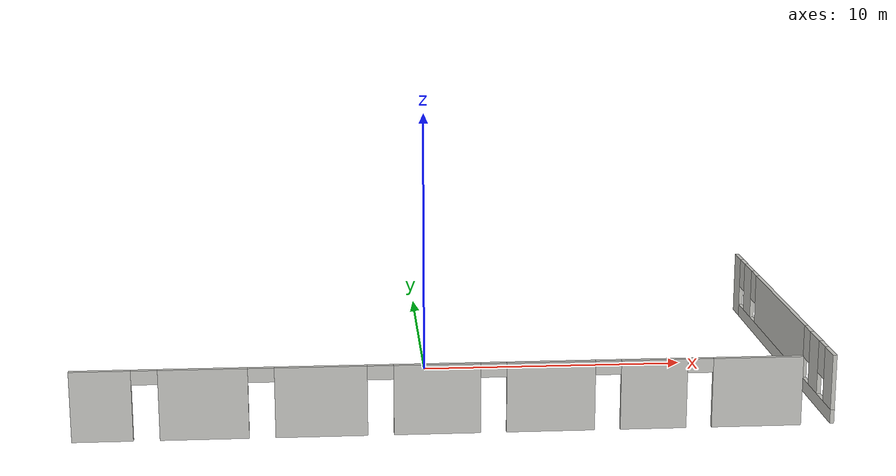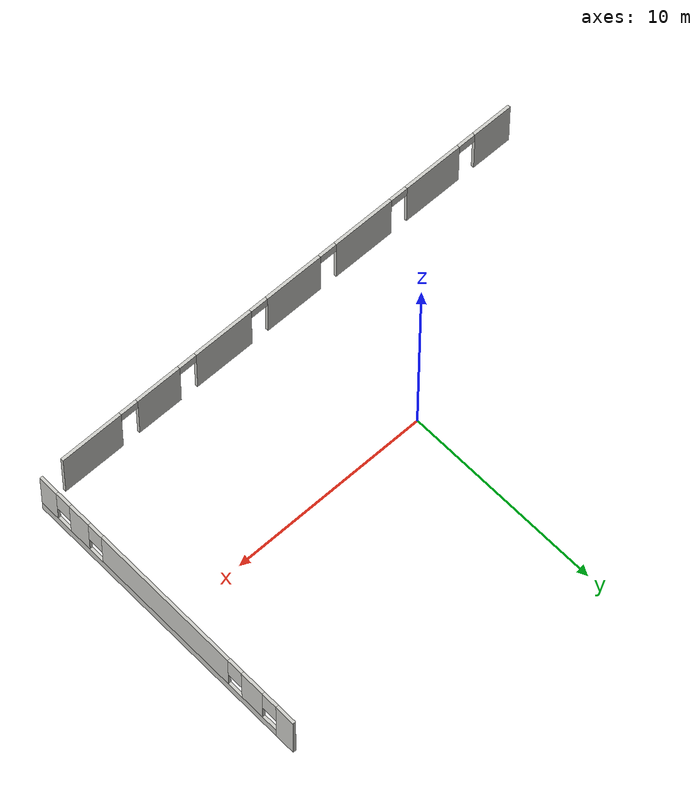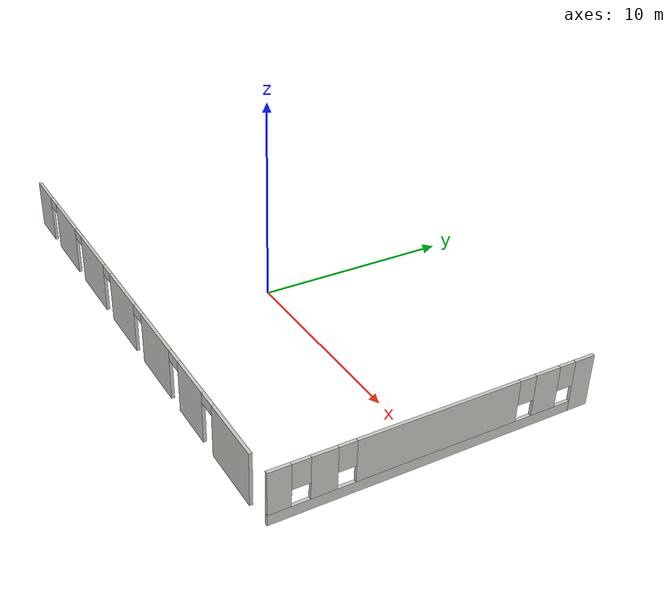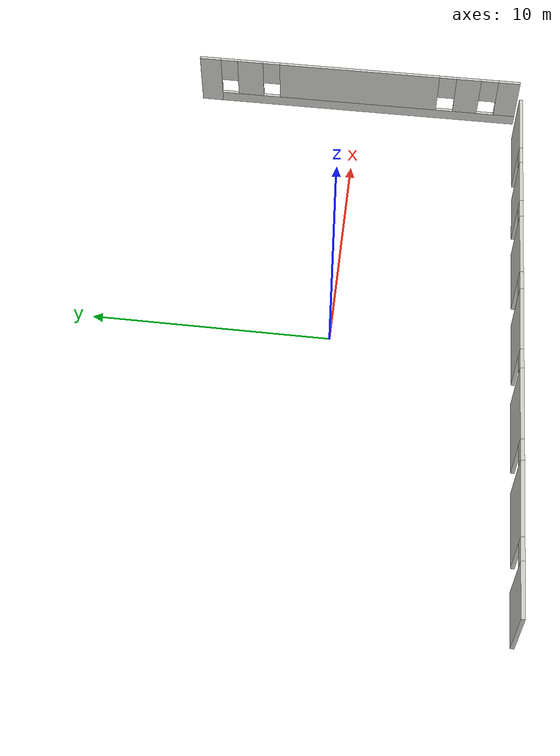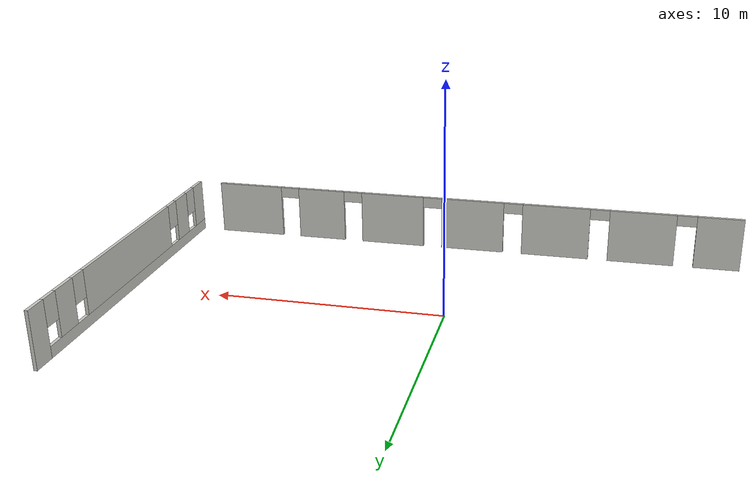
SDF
<sdf version="1.6">
 <model name="CV1_giardino2">
  <link name="Wall_0_clone">
   <pose>14.0185 0.09324 0 0 0 -1.57729</pose>
   <visual name="Wall_0_Visual_4">
    <pose>5.1919 0 1.5 0 -0 0</pose>
    <geometry><box><size>1.15146 0.15 2</size></box></geometry>
    <material>
     <script><uri>file://media/materials/scripts/gazebo.material</uri><name>Gazebo/CeilingTiled</name></script>
     <ambient>1 1 1 1</ambient>
     <diffuse>1 1 1 1</diffuse>
     <specular>0 0 0 1</specular>
     <emissive>0 0 0 1</emissive>
     <shader type="pixel"/>
    </material>
   </visual>
   <visual name="Wall_0_Visual_1">
    <pose>0.499892 0 0.25 0 -0 0</pose>
    <geometry><box><size>14.1401 0.15 0.5</size></box></geometry>
    <material>
     <script><uri>file://media/materials/scripts/gazebo.material</uri><name>Gazebo/CeilingTiled</name></script>
     <ambient>1 1 1 1</ambient>
     <diffuse>1 1 1 1</diffuse>
     <specular>0 0 0 1</specular>
     <emissive>0 0 0 1</emissive>
     <shader type="pixel"/>
    </material>
   </visual>
   <visual name="Wall_0_Visual_0">
    <pose>-7.07005 0 1.25 0 -0 0</pose>
    <geometry><box><size>0.999785 0.15 2.5</size></box></geometry>
    <material>
     <script><uri>file://media/materials/scripts/gazebo.material</uri><name>Gazebo/CeilingTiled</name></script>
     <ambient>1 1 1 1</ambient>
     <diffuse>1 1 1 1</diffuse>
     <specular>0 0 0 1</specular>
     <emissive>0 0 0 1</emissive>
     <shader type="pixel"/>
    </material>
   </visual>
   <visual name="Wall_0_Visual_2">
    <pose>-5.15824 0 1.5 0 -0 0</pose>
    <geometry><box><size>1.22384 0.15 2</size></box></geometry>
    <material>
     <script><uri>file://media/materials/scripts/gazebo.material</uri><name>Gazebo/CeilingTiled</name></script>
     <ambient>1 1 1 1</ambient>
     <diffuse>1 1 1 1</diffuse>
     <specular>0 0 0 1</specular>
     <emissive>0 0 0 1</emissive>
     <shader type="pixel"/>
    </material>
   </visual>
   <visual name="Wall_0_Visual_3">
    <pose>0.034926 0 1.5 0 -0 0</pose>
    <geometry><box><size>7.56249 0.15 2</size></box></geometry>
    <material>
     <script><uri>file://media/materials/scripts/gazebo.material</uri><name>Gazebo/CeilingTiled</name></script>
     <ambient>1 1 1 1</ambient>
     <diffuse>1 1 1 1</diffuse>
     <specular>0 0 0 1</specular>
     <emissive>0 0 0 1</emissive>
     <shader type="pixel"/>
    </material>
   </visual>
   <visual name="Wall_0_Visual_5">
    <pose>7.06879 0 1.5 0 -0 0</pose>
    <geometry><box><size>1.00231 0.15 2</size></box></geometry>
    <material>
     <script><uri>file://media/materials/scripts/gazebo.material</uri><name>Gazebo/CeilingTiled</name></script>
     <ambient>1 1 1 1</ambient>
     <diffuse>1 1 1 1</diffuse>
     <specular>0 0 0 1</specular>
     <emissive>0 0 0 1</emissive>
     <shader type="pixel"/>
    </material>
   </visual>
   <visual name="Wall_0_Visual_6">
    <pose>-6.17016 0 1.9 0 -0 0</pose>
    <geometry><box><size>0.8 0.15 1.2</size></box></geometry>
    <material>
     <script><uri>file://media/materials/scripts/gazebo.material</uri><name>Gazebo/CeilingTiled</name></script>
     <ambient>1 1 1 1</ambient>
     <diffuse>1 1 1 1</diffuse>
     <specular>0 0 0 1</specular>
     <emissive>0 0 0 1</emissive>
     <shader type="pixel"/>
    </material>
   </visual>
   <visual name="Wall_0_Visual_7">
    <pose>-4.14632 0 1.9 0 -0 0</pose>
    <geometry><box><size>0.8 0.15 1.2</size></box></geometry>
    <material>
     <script><uri>file://media/materials/scripts/gazebo.material</uri><name>Gazebo/CeilingTiled</name></script>
     <ambient>1 1 1 1</ambient>
     <diffuse>1 1 1 1</diffuse>
     <specular>0 0 0 1</specular>
     <emissive>0 0 0 1</emissive>
     <shader type="pixel"/>
    </material>
   </visual>
   <visual name="Wall_0_Visual_8">
    <pose>4.21617 0 1.9 0 -0 0</pose>
    <geometry><box><size>0.8 0.15 1.2</size></box></geometry>
    <material>
     <script><uri>file://media/materials/scripts/gazebo.material</uri><name>Gazebo/CeilingTiled</name></script>
     <ambient>1 1 1 1</ambient>
     <diffuse>1 1 1 1</diffuse>
     <specular>0 0 0 1</specular>
     <emissive>0 0 0 1</emissive>
     <shader type="pixel"/>
    </material>
   </visual>
   <visual name="Wall_0_Visual_9">
    <pose>6.16763 0 1.9 0 -0 0</pose>
    <geometry><box><size>0.8 0.15 1.2</size></box></geometry>
    <material>
     <script><uri>file://media/materials/scripts/gazebo.material</uri><name>Gazebo/CeilingTiled</name></script>
     <ambient>1 1 1 1</ambient>
     <diffuse>1 1 1 1</diffuse>
     <specular>0 0 0 1</specular>
     <emissive>0 0 0 1</emissive>
     <shader type="pixel"/>
    </material>
   </visual>
   <collision name="Wall_0_Collision_0">
    <pose>-7.07005 0 1.25 0 -0 0</pose>
    <geometry><box><size>0.999785 0.15 2.5</size></box></geometry>
    <surface>
     <friction>
      <ode><mu>1</mu><mu2>1</mu2><fdir1>0 0 0</fdir1><slip1>0</slip1><slip2>0</slip2></ode>
      <torsional>
       <coefficient>1</coefficient>
       <patch_radius>0</patch_radius>
       <surface_radius>0</surface_radius>
       <use_patch_radius>1</use_patch_radius>
       <ode><slip>0</slip></ode>
      </torsional>
     </friction>
     <bounce><restitution_coefficient>0</restitution_coefficient><threshold>1e+06</threshold></bounce>
     <contact>
      <collide_without_contact>0</collide_without_contact>
      <collide_without_contact_bitmask>1</collide_without_contact_bitmask>
      <collide_bitmask>1</collide_bitmask>
      <ode>
       <soft_cfm>0</soft_cfm>
       <soft_erp>0.2</soft_erp>
       <kp>1e+13</kp>
       <kd>1</kd>
       <max_vel>0.01</max_vel>
       <min_depth>0</min_depth>
      </ode>
      <bullet>
       <split_impulse>1</split_impulse>
       <split_impulse_penetration_threshold>-0.01</split_impulse_penetration_threshold>
       <soft_cfm>0</soft_cfm>
       <soft_erp>0.2</soft_erp>
       <kp>1e+13</kp>
       <kd>1</kd>
      </bullet>
     </contact>
    </surface>
   </collision>
   <collision name="Wall_0_Collision_1">
    <pose>0.499892 0 0.25 0 -0 0</pose>
    <geometry><box><size>14.1401 0.15 0.5</size></box></geometry>
    <surface>
     <friction>
      <ode><mu>1</mu><mu2>1</mu2><fdir1>0 0 0</fdir1><slip1>0</slip1><slip2>0</slip2></ode>
      <torsional>
       <coefficient>1</coefficient>
       <patch_radius>0</patch_radius>
       <surface_radius>0</surface_radius>
       <use_patch_radius>1</use_patch_radius>
       <ode><slip>0</slip></ode>
      </torsional>
     </friction>
     <bounce><restitution_coefficient>0</restitution_coefficient><threshold>1e+06</threshold></bounce>
     <contact>
      <collide_without_contact>0</collide_without_contact>
      <collide_without_contact_bitmask>1</collide_without_contact_bitmask>
      <collide_bitmask>1</collide_bitmask>
      <ode>
       <soft_cfm>0</soft_cfm>
       <soft_erp>0.2</soft_erp>
       <kp>1e+13</kp>
       <kd>1</kd>
       <max_vel>0.01</max_vel>
       <min_depth>0</min_depth>
      </ode>
      <bullet>
       <split_impulse>1</split_impulse>
       <split_impulse_penetration_threshold>-0.01</split_impulse_penetration_threshold>
       <soft_cfm>0</soft_cfm>
       <soft_erp>0.2</soft_erp>
       <kp>1e+13</kp>
       <kd>1</kd>
      </bullet>
     </contact>
    </surface>
   </collision>
   <collision name="Wall_0_Collision_2">
    <pose>-5.15824 0 1.5 0 -0 0</pose>
    <geometry><box><size>1.22384 0.15 2</size></box></geometry>
    <surface>
     <friction>
      <ode><mu>1</mu><mu2>1</mu2><fdir1>0 0 0</fdir1><slip1>0</slip1><slip2>0</slip2></ode>
      <torsional>
       <coefficient>1</coefficient>
       <patch_radius>0</patch_radius>
       <surface_radius>0</surface_radius>
       <use_patch_radius>1</use_patch_radius>
       <ode><slip>0</slip></ode>
      </torsional>
     </friction>
     <bounce><restitution_coefficient>0</restitution_coefficient><threshold>1e+06</threshold></bounce>
     <contact>
      <collide_without_contact>0</collide_without_contact>
      <collide_without_contact_bitmask>1</collide_without_contact_bitmask>
      <collide_bitmask>1</collide_bitmask>
      <ode>
       <soft_cfm>0</soft_cfm>
       <soft_erp>0.2</soft_erp>
       <kp>1e+13</kp>
       <kd>1</kd>
       <max_vel>0.01</max_vel>
       <min_depth>0</min_depth>
      </ode>
      <bullet>
       <split_impulse>1</split_impulse>
       <split_impulse_penetration_threshold>-0.01</split_impulse_penetration_threshold>
       <soft_cfm>0</soft_cfm>
       <soft_erp>0.2</soft_erp>
       <kp>1e+13</kp>
       <kd>1</kd>
      </bullet>
     </contact>
    </surface>
   </collision>
   <collision name="Wall_0_Collision_3">
    <pose>0.034926 0 1.5 0 -0 0</pose>
    <geometry><box><size>7.56249 0.15 2</size></box></geometry>
    <surface>
     <friction>
      <ode><mu>1</mu><mu2>1</mu2><fdir1>0 0 0</fdir1><slip1>0</slip1><slip2>0</slip2></ode>
      <torsional>
       <coefficient>1</coefficient>
       <patch_radius>0</patch_radius>
       <surface_radius>0</surface_radius>
       <use_patch_radius>1</use_patch_radius>
       <ode><slip>0</slip></ode>
      </torsional>
     </friction>
     <bounce><restitution_coefficient>0</restitution_coefficient><threshold>1e+06</threshold></bounce>
     <contact>
      <collide_without_contact>0</collide_without_contact>
      <collide_without_contact_bitmask>1</collide_without_contact_bitmask>
      <collide_bitmask>1</collide_bitmask>
      <ode>
       <soft_cfm>0</soft_cfm>
       <soft_erp>0.2</soft_erp>
       <kp>1e+13</kp>
       <kd>1</kd>
       <max_vel>0.01</max_vel>
       <min_depth>0</min_depth>
      </ode>
      <bullet>
       <split_impulse>1</split_impulse>
       <split_impulse_penetration_threshold>-0.01</split_impulse_penetration_threshold>
       <soft_cfm>0</soft_cfm>
       <soft_erp>0.2</soft_erp>
       <kp>1e+13</kp>
       <kd>1</kd>
      </bullet>
     </contact>
    </surface>
   </collision>
   <collision name="Wall_0_Collision_5">
    <pose>7.06879 0 1.5 0 -0 0</pose>
    <geometry><box><size>1.00231 0.15 2</size></box></geometry>
    <surface>
     <friction>
      <ode><mu>1</mu><mu2>1</mu2><fdir1>0 0 0</fdir1><slip1>0</slip1><slip2>0</slip2></ode>
      <torsional>
       <coefficient>1</coefficient>
       <patch_radius>0</patch_radius>
       <surface_radius>0</surface_radius>
       <use_patch_radius>1</use_patch_radius>
       <ode><slip>0</slip></ode>
      </torsional>
     </friction>
     <bounce><restitution_coefficient>0</restitution_coefficient><threshold>1e+06</threshold></bounce>
     <contact>
      <collide_without_contact>0</collide_without_contact>
      <collide_without_contact_bitmask>1</collide_without_contact_bitmask>
      <collide_bitmask>1</collide_bitmask>
      <ode>
       <soft_cfm>0</soft_cfm>
       <soft_erp>0.2</soft_erp>
       <kp>1e+13</kp>
       <kd>1</kd>
       <max_vel>0.01</max_vel>
       <min_depth>0</min_depth>
      </ode>
      <bullet>
       <split_impulse>1</split_impulse>
       <split_impulse_penetration_threshold>-0.01</split_impulse_penetration_threshold>
       <soft_cfm>0</soft_cfm>
       <soft_erp>0.2</soft_erp>
       <kp>1e+13</kp>
       <kd>1</kd>
      </bullet>
     </contact>
    </surface>
   </collision>
   <collision name="Wall_0_Collision_4">
    <pose>5.1919 0 1.5 0 -0 0</pose>
    <geometry><box><size>1.15146 0.15 2</size></box></geometry>
    <surface>
     <friction>
      <ode><mu>1</mu><mu2>1</mu2><fdir1>0 0 0</fdir1><slip1>0</slip1><slip2>0</slip2></ode>
      <torsional>
       <coefficient>1</coefficient>
       <patch_radius>0</patch_radius>
       <surface_radius>0</surface_radius>
       <use_patch_radius>1</use_patch_radius>
       <ode><slip>0</slip></ode>
      </torsional>
     </friction>
     <bounce><restitution_coefficient>0</restitution_coefficient><threshold>1e+06</threshold></bounce>
     <contact>
      <collide_without_contact>0</collide_without_contact>
      <collide_without_contact_bitmask>1</collide_without_contact_bitmask>
      <collide_bitmask>1</collide_bitmask>
      <ode>
       <soft_cfm>0</soft_cfm>
       <soft_erp>0.2</soft_erp>
       <kp>1e+13</kp>
       <kd>1</kd>
       <max_vel>0.01</max_vel>
       <min_depth>0</min_depth>
      </ode>
      <bullet>
       <split_impulse>1</split_impulse>
       <split_impulse_penetration_threshold>-0.01</split_impulse_penetration_threshold>
       <soft_cfm>0</soft_cfm>
       <soft_erp>0.2</soft_erp>
       <kp>1e+13</kp>
       <kd>1</kd>
      </bullet>
     </contact>
    </surface>
   </collision>
   <collision name="Wall_0_Collision_6">
    <pose>-6.17016 0 1.9 0 -0 0</pose>
    <geometry><box><size>0.8 0.15 1.2</size></box></geometry>
    <surface>
     <friction>
      <ode><mu>1</mu><mu2>1</mu2><fdir1>0 0 0</fdir1><slip1>0</slip1><slip2>0</slip2></ode>
      <torsional>
       <coefficient>1</coefficient>
       <patch_radius>0</patch_radius>
       <surface_radius>0</surface_radius>
       <use_patch_radius>1</use_patch_radius>
       <ode><slip>0</slip></ode>
      </torsional>
     </friction>
     <bounce><restitution_coefficient>0</restitution_coefficient><threshold>1e+06</threshold></bounce>
     <contact>
      <collide_without_contact>0</collide_without_contact>
      <collide_without_contact_bitmask>1</collide_without_contact_bitmask>
      <collide_bitmask>1</collide_bitmask>
      <ode>
       <soft_cfm>0</soft_cfm>
       <soft_erp>0.2</soft_erp>
       <kp>1e+13</kp>
       <kd>1</kd>
       <max_vel>0.01</max_vel>
       <min_depth>0</min_depth>
      </ode>
      <bullet>
       <split_impulse>1</split_impulse>
       <split_impulse_penetration_threshold>-0.01</split_impulse_penetration_threshold>
       <soft_cfm>0</soft_cfm>
       <soft_erp>0.2</soft_erp>
       <kp>1e+13</kp>
       <kd>1</kd>
      </bullet>
     </contact>
    </surface>
   </collision>
   <collision name="Wall_0_Collision_7">
    <pose>-4.14632 0 1.9 0 -0 0</pose>
    <geometry><box><size>0.8 0.15 1.2</size></box></geometry>
    <surface>
     <friction>
      <ode><mu>1</mu><mu2>1</mu2><fdir1>0 0 0</fdir1><slip1>0</slip1><slip2>0</slip2></ode>
      <torsional>
       <coefficient>1</coefficient>
       <patch_radius>0</patch_radius>
       <surface_radius>0</surface_radius>
       <use_patch_radius>1</use_patch_radius>
       <ode><slip>0</slip></ode>
      </torsional>
     </friction>
     <bounce><restitution_coefficient>0</restitution_coefficient><threshold>1e+06</threshold></bounce>
     <contact>
      <collide_without_contact>0</collide_without_contact>
      <collide_without_contact_bitmask>1</collide_without_contact_bitmask>
      <collide_bitmask>1</collide_bitmask>
      <ode>
       <soft_cfm>0</soft_cfm>
       <soft_erp>0.2</soft_erp>
       <kp>1e+13</kp>
       <kd>1</kd>
       <max_vel>0.01</max_vel>
       <min_depth>0</min_depth>
      </ode>
      <bullet>
       <split_impulse>1</split_impulse>
       <split_impulse_penetration_threshold>-0.01</split_impulse_penetration_threshold>
       <soft_cfm>0</soft_cfm>
       <soft_erp>0.2</soft_erp>
       <kp>1e+13</kp>
       <kd>1</kd>
      </bullet>
     </contact>
    </surface>
   </collision>
   <collision name="Wall_0_Collision_9">
    <pose>6.16763 0 1.9 0 -0 0</pose>
    <geometry><box><size>0.8 0.15 1.2</size></box></geometry>
    <surface>
     <friction>
      <ode><mu>1</mu><mu2>1</mu2><fdir1>0 0 0</fdir1><slip1>0</slip1><slip2>0</slip2></ode>
      <torsional>
       <coefficient>1</coefficient>
       <patch_radius>0</patch_radius>
       <surface_radius>0</surface_radius>
       <use_patch_radius>1</use_patch_radius>
       <ode><slip>0</slip></ode>
      </torsional>
     </friction>
     <bounce><restitution_coefficient>0</restitution_coefficient><threshold>1e+06</threshold></bounce>
     <contact>
      <collide_without_contact>0</collide_without_contact>
      <collide_without_contact_bitmask>1</collide_without_contact_bitmask>
      <collide_bitmask>1</collide_bitmask>
      <ode>
       <soft_cfm>0</soft_cfm>
       <soft_erp>0.2</soft_erp>
       <kp>1e+13</kp>
       <kd>1</kd>
       <max_vel>0.01</max_vel>
       <min_depth>0</min_depth>
      </ode>
      <bullet>
       <split_impulse>1</split_impulse>
       <split_impulse_penetration_threshold>-0.01</split_impulse_penetration_threshold>
       <soft_cfm>0</soft_cfm>
       <soft_erp>0.2</soft_erp>
       <kp>1e+13</kp>
       <kd>1</kd>
      </bullet>
     </contact>
    </surface>
   </collision>
   <collision name="Wall_0_Collision_8">
    <pose>4.21617 0 1.9 0 -0 0</pose>
    <geometry><box><size>0.8 0.15 1.2</size></box></geometry>
    <surface>
     <friction>
      <ode><mu>1</mu><mu2>1</mu2><fdir1>0 0 0</fdir1><slip1>0</slip1><slip2>0</slip2></ode>
      <torsional>
       <coefficient>1</coefficient>
       <patch_radius>0</patch_radius>
       <surface_radius>0</surface_radius>
       <use_patch_radius>1</use_patch_radius>
       <ode><slip>0</slip></ode>
      </torsional>
     </friction>
     <bounce><restitution_coefficient>0</restitution_coefficient><threshold>1e+06</threshold></bounce>
     <contact>
      <collide_without_contact>0</collide_without_contact>
      <collide_without_contact_bitmask>1</collide_without_contact_bitmask>
      <collide_bitmask>1</collide_bitmask>
      <ode>
       <soft_cfm>0</soft_cfm>
       <soft_erp>0.2</soft_erp>
       <kp>1e+13</kp>
       <kd>1</kd>
       <max_vel>0.01</max_vel>
       <min_depth>0</min_depth>
      </ode>
      <bullet>
       <split_impulse>1</split_impulse>
       <split_impulse_penetration_threshold>-0.01</split_impulse_penetration_threshold>
       <soft_cfm>0</soft_cfm>
       <soft_erp>0.2</soft_erp>
       <kp>1e+13</kp>
       <kd>1</kd>
      </bullet>
     </contact>
    </surface>
   </collision>
  </link>
  <link name="Wall_9">
   <pose>0.202026 -7.50143 0 0 -0 3.14159</pose>
   <visual name="Wall_9_Visual_0">
    <pose>-11.0382 0 1.25 0 -0 0</pose>
    <geometry><box><size>3.17352 0.15 2.5</size></box></geometry>
    <material>
     <script><uri>file://media/materials/scripts/gazebo.material</uri><name>Gazebo/CeilingTiled</name></script>
     <ambient>1 1 1 1</ambient>
     <diffuse>1 1 1 1</diffuse>
     <specular>0 0 0 1</specular>
     <emissive>0 0 0 1</emissive>
    </material>
   </visual>
   <visual name="Wall_9_Visual_1">
    <pose>-7.39122 0 1.25 0 -0 0</pose>
    <geometry><box><size>2.32053 0.15 2.5</size></box></geometry>
    <material>
     <script><uri>file://media/materials/scripts/gazebo.material</uri><name>Gazebo/CeilingTiled</name></script>
     <ambient>1 1 1 1</ambient>
     <diffuse>1 1 1 1</diffuse>
     <specular>0 0 0 1</specular>
     <emissive>0 0 0 1</emissive>
    </material>
   </visual>
   <visual name="Wall_9_Visual_2">
    <pose>-3.79149 0 1.25 0 -0 0</pose>
    <geometry><box><size>3.07892 0.15 2.5</size></box></geometry>
    <material>
     <script><uri>file://media/materials/scripts/gazebo.material</uri><name>Gazebo/CeilingTiled</name></script>
     <ambient>1 1 1 1</ambient>
     <diffuse>1 1 1 1</diffuse>
     <specular>0 0 0 1</specular>
     <emissive>0 0 0 1</emissive>
    </material>
   </visual>
   <visual name="Wall_9_Visual_3">
    <pose>0.145317 0 1.25 0 -0 0</pose>
    <geometry><box><size>2.99471 0.15 2.5</size></box></geometry>
    <material>
     <script><uri>file://media/materials/scripts/gazebo.material</uri><name>Gazebo/CeilingTiled</name></script>
     <ambient>1 1 1 1</ambient>
     <diffuse>1 1 1 1</diffuse>
     <specular>0 0 0 1</specular>
     <emissive>0 0 0 1</emissive>
    </material>
   </visual>
   <visual name="Wall_9_Visual_5">
    <pose>8.1242 0 1.25 0 -0 0</pose>
    <geometry><box><size>3.03681 0.15 2.5</size></box></geometry>
    <material>
     <script><uri>file://media/materials/scripts/gazebo.material</uri><name>Gazebo/CeilingTiled</name></script>
     <ambient>1 1 1 1</ambient>
     <diffuse>1 1 1 1</diffuse>
     <specular>0 0 0 1</specular>
     <emissive>0 0 0 1</emissive>
    </material>
   </visual>
   <visual name="Wall_9_Visual_4">
    <pose>4.12423 0 1.25 0 -0 0</pose>
    <geometry><box><size>3.16313 0.15 2.5</size></box></geometry>
    <material>
     <script><uri>file://media/materials/scripts/gazebo.material</uri><name>Gazebo/CeilingTiled</name></script>
     <ambient>1 1 1 1</ambient>
     <diffuse>1 1 1 1</diffuse>
     <specular>0 0 0 1</specular>
     <emissive>0 0 0 1</emissive>
    </material>
   </visual>
   <visual name="Wall_9_Visual_6">
    <pose>11.5838 0 1.25 0 -0 0</pose>
    <geometry><box><size>2.08239 0.15 2.5</size></box></geometry>
    <material>
     <script><uri>file://media/materials/scripts/gazebo.material</uri><name>Gazebo/CeilingTiled</name></script>
     <ambient>1 1 1 1</ambient>
     <diffuse>1 1 1 1</diffuse>
     <specular>0 0 0 1</specular>
     <emissive>0 0 0 1</emissive>
    </material>
   </visual>
   <visual name="Wall_9_Visual_8">
    <pose>-5.78095 0 2.25 0 -0 0</pose>
    <geometry><box><size>0.9 0.15 0.5</size></box></geometry>
    <material>
     <script><uri>file://media/materials/scripts/gazebo.material</uri><name>Gazebo/CeilingTiled</name></script>
     <ambient>1 1 1 1</ambient>
     <diffuse>1 1 1 1</diffuse>
     <specular>0 0 0 1</specular>
     <emissive>0 0 0 1</emissive>
    </material>
   </visual>
   <visual name="Wall_9_Visual_7">
    <pose>-9.00148 0 2.25 0 -0 0</pose>
    <geometry><box><size>0.9 0.15 0.5</size></box></geometry>
    <material>
     <script><uri>file://media/materials/scripts/gazebo.material</uri><name>Gazebo/CeilingTiled</name></script>
     <ambient>1 1 1 1</ambient>
     <diffuse>1 1 1 1</diffuse>
     <specular>0 0 0 1</specular>
     <emissive>0 0 0 1</emissive>
    </material>
   </visual>
   <visual name="Wall_9_Visual_9">
    <pose>-1.80204 0 2.25 0 -0 0</pose>
    <geometry><box><size>0.9 0.15 0.5</size></box></geometry>
    <material>
     <script><uri>file://media/materials/scripts/gazebo.material</uri><name>Gazebo/CeilingTiled</name></script>
     <ambient>1 1 1 1</ambient>
     <diffuse>1 1 1 1</diffuse>
     <specular>0 0 0 1</specular>
     <emissive>0 0 0 1</emissive>
    </material>
   </visual>
   <visual name="Wall_9_Visual_10">
    <pose>2.09267 0 2.25 0 -0 0</pose>
    <geometry><box><size>0.9 0.15 0.5</size></box></geometry>
    <material>
     <script><uri>file://media/materials/scripts/gazebo.material</uri><name>Gazebo/CeilingTiled</name></script>
     <ambient>1 1 1 1</ambient>
     <diffuse>1 1 1 1</diffuse>
     <specular>0 0 0 1</specular>
     <emissive>0 0 0 1</emissive>
    </material>
   </visual>
   <visual name="Wall_9_Visual_11">
    <pose>6.1558 0 2.25 0 -0 0</pose>
    <geometry><box><size>0.9 0.15 0.5</size></box></geometry>
    <material>
     <script><uri>file://media/materials/scripts/gazebo.material</uri><name>Gazebo/CeilingTiled</name></script>
     <ambient>1 1 1 1</ambient>
     <diffuse>1 1 1 1</diffuse>
     <specular>0 0 0 1</specular>
     <emissive>0 0 0 1</emissive>
    </material>
   </visual>
   <visual name="Wall_9_Visual_12">
    <pose>10.0926 0 2.25 0 -0 0</pose>
    <geometry><box><size>0.9 0.15 0.5</size></box></geometry>
    <material>
     <script><uri>file://media/materials/scripts/gazebo.material</uri><name>Gazebo/CeilingTiled</name></script>
     <ambient>1 1 1 1</ambient>
     <diffuse>1 1 1 1</diffuse>
     <specular>0 0 0 1</specular>
     <emissive>0 0 0 1</emissive>
    </material>
   </visual>
   <collision name="Wall_9_Collision_0">
    <pose>-11.0382 0 1.25 0 -0 0</pose>
    <geometry><box><size>3.17352 0.15 2.5</size></box></geometry>
    <surface>
     <friction>
      <ode><mu>1</mu><mu2>1</mu2><fdir1>0 0 0</fdir1><slip1>0</slip1><slip2>0</slip2></ode>
      <torsional>
       <coefficient>1</coefficient>
       <patch_radius>0</patch_radius>
       <surface_radius>0</surface_radius>
       <use_patch_radius>1</use_patch_radius>
       <ode><slip>0</slip></ode>
      </torsional>
     </friction>
     <bounce><restitution_coefficient>0</restitution_coefficient><threshold>1e+06</threshold></bounce>
     <contact>
      <collide_without_contact>0</collide_without_contact>
      <collide_without_contact_bitmask>1</collide_without_contact_bitmask>
      <collide_bitmask>1</collide_bitmask>
      <ode>
       <soft_cfm>0</soft_cfm>
       <soft_erp>0.2</soft_erp>
       <kp>1e+13</kp>
       <kd>1</kd>
       <max_vel>0.01</max_vel>
       <min_depth>0</min_depth>
      </ode>
      <bullet>
       <split_impulse>1</split_impulse>
       <split_impulse_penetration_threshold>-0.01</split_impulse_penetration_threshold>
       <soft_cfm>0</soft_cfm>
       <soft_erp>0.2</soft_erp>
       <kp>1e+13</kp>
       <kd>1</kd>
      </bullet>
     </contact>
    </surface>
   </collision>
   <collision name="Wall_9_Collision_1">
    <pose>-7.39122 0 1.25 0 -0 0</pose>
    <geometry><box><size>2.32053 0.15 2.5</size></box></geometry>
    <surface>
     <friction>
      <ode><mu>1</mu><mu2>1</mu2><fdir1>0 0 0</fdir1><slip1>0</slip1><slip2>0</slip2></ode>
      <torsional>
       <coefficient>1</coefficient>
       <patch_radius>0</patch_radius>
       <surface_radius>0</surface_radius>
       <use_patch_radius>1</use_patch_radius>
       <ode><slip>0</slip></ode>
      </torsional>
     </friction>
     <bounce><restitution_coefficient>0</restitution_coefficient><threshold>1e+06</threshold></bounce>
     <contact>
      <collide_without_contact>0</collide_without_contact>
      <collide_without_contact_bitmask>1</collide_without_contact_bitmask>
      <collide_bitmask>1</collide_bitmask>
      <ode>
       <soft_cfm>0</soft_cfm>
       <soft_erp>0.2</soft_erp>
       <kp>1e+13</kp>
       <kd>1</kd>
       <max_vel>0.01</max_vel>
       <min_depth>0</min_depth>
      </ode>
      <bullet>
       <split_impulse>1</split_impulse>
       <split_impulse_penetration_threshold>-0.01</split_impulse_penetration_threshold>
       <soft_cfm>0</soft_cfm>
       <soft_erp>0.2</soft_erp>
       <kp>1e+13</kp>
       <kd>1</kd>
      </bullet>
     </contact>
    </surface>
   </collision>
   <collision name="Wall_9_Collision_3">
    <pose>0.145317 0 1.25 0 -0 0</pose>
    <geometry><box><size>2.99471 0.15 2.5</size></box></geometry>
    <surface>
     <friction>
      <ode><mu>1</mu><mu2>1</mu2><fdir1>0 0 0</fdir1><slip1>0</slip1><slip2>0</slip2></ode>
      <torsional>
       <coefficient>1</coefficient>
       <patch_radius>0</patch_radius>
       <surface_radius>0</surface_radius>
       <use_patch_radius>1</use_patch_radius>
       <ode><slip>0</slip></ode>
      </torsional>
     </friction>
     <bounce><restitution_coefficient>0</restitution_coefficient><threshold>1e+06</threshold></bounce>
     <contact>
      <collide_without_contact>0</collide_without_contact>
      <collide_without_contact_bitmask>1</collide_without_contact_bitmask>
      <collide_bitmask>1</collide_bitmask>
      <ode>
       <soft_cfm>0</soft_cfm>
       <soft_erp>0.2</soft_erp>
       <kp>1e+13</kp>
       <kd>1</kd>
       <max_vel>0.01</max_vel>
       <min_depth>0</min_depth>
      </ode>
      <bullet>
       <split_impulse>1</split_impulse>
       <split_impulse_penetration_threshold>-0.01</split_impulse_penetration_threshold>
       <soft_cfm>0</soft_cfm>
       <soft_erp>0.2</soft_erp>
       <kp>1e+13</kp>
       <kd>1</kd>
      </bullet>
     </contact>
    </surface>
   </collision>
   <collision name="Wall_9_Collision_2">
    <pose>-3.79149 0 1.25 0 -0 0</pose>
    <geometry><box><size>3.07892 0.15 2.5</size></box></geometry>
    <surface>
     <friction>
      <ode><mu>1</mu><mu2>1</mu2><fdir1>0 0 0</fdir1><slip1>0</slip1><slip2>0</slip2></ode>
      <torsional>
       <coefficient>1</coefficient>
       <patch_radius>0</patch_radius>
       <surface_radius>0</surface_radius>
       <use_patch_radius>1</use_patch_radius>
       <ode><slip>0</slip></ode>
      </torsional>
     </friction>
     <bounce><restitution_coefficient>0</restitution_coefficient><threshold>1e+06</threshold></bounce>
     <contact>
      <collide_without_contact>0</collide_without_contact>
      <collide_without_contact_bitmask>1</collide_without_contact_bitmask>
      <collide_bitmask>1</collide_bitmask>
      <ode>
       <soft_cfm>0</soft_cfm>
       <soft_erp>0.2</soft_erp>
       <kp>1e+13</kp>
       <kd>1</kd>
       <max_vel>0.01</max_vel>
       <min_depth>0</min_depth>
      </ode>
      <bullet>
       <split_impulse>1</split_impulse>
       <split_impulse_penetration_threshold>-0.01</split_impulse_penetration_threshold>
       <soft_cfm>0</soft_cfm>
       <soft_erp>0.2</soft_erp>
       <kp>1e+13</kp>
       <kd>1</kd>
      </bullet>
     </contact>
    </surface>
   </collision>
   <collision name="Wall_9_Collision_4">
    <pose>4.12423 0 1.25 0 -0 0</pose>
    <geometry><box><size>3.16313 0.15 2.5</size></box></geometry>
    <surface>
     <friction>
      <ode><mu>1</mu><mu2>1</mu2><fdir1>0 0 0</fdir1><slip1>0</slip1><slip2>0</slip2></ode>
      <torsional>
       <coefficient>1</coefficient>
       <patch_radius>0</patch_radius>
       <surface_radius>0</surface_radius>
       <use_patch_radius>1</use_patch_radius>
       <ode><slip>0</slip></ode>
      </torsional>
     </friction>
     <bounce><restitution_coefficient>0</restitution_coefficient><threshold>1e+06</threshold></bounce>
     <contact>
      <collide_without_contact>0</collide_without_contact>
      <collide_without_contact_bitmask>1</collide_without_contact_bitmask>
      <collide_bitmask>1</collide_bitmask>
      <ode>
       <soft_cfm>0</soft_cfm>
       <soft_erp>0.2</soft_erp>
       <kp>1e+13</kp>
       <kd>1</kd>
       <max_vel>0.01</max_vel>
       <min_depth>0</min_depth>
      </ode>
      <bullet>
       <split_impulse>1</split_impulse>
       <split_impulse_penetration_threshold>-0.01</split_impulse_penetration_threshold>
       <soft_cfm>0</soft_cfm>
       <soft_erp>0.2</soft_erp>
       <kp>1e+13</kp>
       <kd>1</kd>
      </bullet>
     </contact>
    </surface>
   </collision>
   <collision name="Wall_9_Collision_5">
    <pose>8.1242 0 1.25 0 -0 0</pose>
    <geometry><box><size>3.03681 0.15 2.5</size></box></geometry>
    <surface>
     <friction>
      <ode><mu>1</mu><mu2>1</mu2><fdir1>0 0 0</fdir1><slip1>0</slip1><slip2>0</slip2></ode>
      <torsional>
       <coefficient>1</coefficient>
       <patch_radius>0</patch_radius>
       <surface_radius>0</surface_radius>
       <use_patch_radius>1</use_patch_radius>
       <ode><slip>0</slip></ode>
      </torsional>
     </friction>
     <bounce><restitution_coefficient>0</restitution_coefficient><threshold>1e+06</threshold></bounce>
     <contact>
      <collide_without_contact>0</collide_without_contact>
      <collide_without_contact_bitmask>1</collide_without_contact_bitmask>
      <collide_bitmask>1</collide_bitmask>
      <ode>
       <soft_cfm>0</soft_cfm>
       <soft_erp>0.2</soft_erp>
       <kp>1e+13</kp>
       <kd>1</kd>
       <max_vel>0.01</max_vel>
       <min_depth>0</min_depth>
      </ode>
      <bullet>
       <split_impulse>1</split_impulse>
       <split_impulse_penetration_threshold>-0.01</split_impulse_penetration_threshold>
       <soft_cfm>0</soft_cfm>
       <soft_erp>0.2</soft_erp>
       <kp>1e+13</kp>
       <kd>1</kd>
      </bullet>
     </contact>
    </surface>
   </collision>
   <collision name="Wall_9_Collision_6">
    <pose>11.5838 0 1.25 0 -0 0</pose>
    <geometry><box><size>2.08239 0.15 2.5</size></box></geometry>
    <surface>
     <friction>
      <ode><mu>1</mu><mu2>1</mu2><fdir1>0 0 0</fdir1><slip1>0</slip1><slip2>0</slip2></ode>
      <torsional>
       <coefficient>1</coefficient>
       <patch_radius>0</patch_radius>
       <surface_radius>0</surface_radius>
       <use_patch_radius>1</use_patch_radius>
       <ode><slip>0</slip></ode>
      </torsional>
     </friction>
     <bounce><restitution_coefficient>0</restitution_coefficient><threshold>1e+06</threshold></bounce>
     <contact>
      <collide_without_contact>0</collide_without_contact>
      <collide_without_contact_bitmask>1</collide_without_contact_bitmask>
      <collide_bitmask>1</collide_bitmask>
      <ode>
       <soft_cfm>0</soft_cfm>
       <soft_erp>0.2</soft_erp>
       <kp>1e+13</kp>
       <kd>1</kd>
       <max_vel>0.01</max_vel>
       <min_depth>0</min_depth>
      </ode>
      <bullet>
       <split_impulse>1</split_impulse>
       <split_impulse_penetration_threshold>-0.01</split_impulse_penetration_threshold>
       <soft_cfm>0</soft_cfm>
       <soft_erp>0.2</soft_erp>
       <kp>1e+13</kp>
       <kd>1</kd>
      </bullet>
     </contact>
    </surface>
   </collision>
   <collision name="Wall_9_Collision_7">
    <pose>-9.00148 0 2.25 0 -0 0</pose>
    <geometry><box><size>0.9 0.15 0.5</size></box></geometry>
    <surface>
     <friction>
      <ode><mu>1</mu><mu2>1</mu2><fdir1>0 0 0</fdir1><slip1>0</slip1><slip2>0</slip2></ode>
      <torsional>
       <coefficient>1</coefficient>
       <patch_radius>0</patch_radius>
       <surface_radius>0</surface_radius>
       <use_patch_radius>1</use_patch_radius>
       <ode><slip>0</slip></ode>
      </torsional>
     </friction>
     <bounce><restitution_coefficient>0</restitution_coefficient><threshold>1e+06</threshold></bounce>
     <contact>
      <collide_without_contact>0</collide_without_contact>
      <collide_without_contact_bitmask>1</collide_without_contact_bitmask>
      <collide_bitmask>1</collide_bitmask>
      <ode>
       <soft_cfm>0</soft_cfm>
       <soft_erp>0.2</soft_erp>
       <kp>1e+13</kp>
       <kd>1</kd>
       <max_vel>0.01</max_vel>
       <min_depth>0</min_depth>
      </ode>
      <bullet>
       <split_impulse>1</split_impulse>
       <split_impulse_penetration_threshold>-0.01</split_impulse_penetration_threshold>
       <soft_cfm>0</soft_cfm>
       <soft_erp>0.2</soft_erp>
       <kp>1e+13</kp>
       <kd>1</kd>
      </bullet>
     </contact>
    </surface>
   </collision>
   <collision name="Wall_9_Collision_8">
    <pose>-5.78095 0 2.25 0 -0 0</pose>
    <geometry><box><size>0.9 0.15 0.5</size></box></geometry>
    <surface>
     <friction>
      <ode><mu>1</mu><mu2>1</mu2><fdir1>0 0 0</fdir1><slip1>0</slip1><slip2>0</slip2></ode>
      <torsional>
       <coefficient>1</coefficient>
       <patch_radius>0</patch_radius>
       <surface_radius>0</surface_radius>
       <use_patch_radius>1</use_patch_radius>
       <ode><slip>0</slip></ode>
      </torsional>
     </friction>
     <bounce><restitution_coefficient>0</restitution_coefficient><threshold>1e+06</threshold></bounce>
     <contact>
      <collide_without_contact>0</collide_without_contact>
      <collide_without_contact_bitmask>1</collide_without_contact_bitmask>
      <collide_bitmask>1</collide_bitmask>
      <ode>
       <soft_cfm>0</soft_cfm>
       <soft_erp>0.2</soft_erp>
       <kp>1e+13</kp>
       <kd>1</kd>
       <max_vel>0.01</max_vel>
       <min_depth>0</min_depth>
      </ode>
      <bullet>
       <split_impulse>1</split_impulse>
       <split_impulse_penetration_threshold>-0.01</split_impulse_penetration_threshold>
       <soft_cfm>0</soft_cfm>
       <soft_erp>0.2</soft_erp>
       <kp>1e+13</kp>
       <kd>1</kd>
      </bullet>
     </contact>
    </surface>
   </collision>
   <collision name="Wall_9_Collision_9">
    <pose>-1.80204 0 2.25 0 -0 0</pose>
    <geometry><box><size>0.9 0.15 0.5</size></box></geometry>
    <surface>
     <friction>
      <ode><mu>1</mu><mu2>1</mu2><fdir1>0 0 0</fdir1><slip1>0</slip1><slip2>0</slip2></ode>
      <torsional>
       <coefficient>1</coefficient>
       <patch_radius>0</patch_radius>
       <surface_radius>0</surface_radius>
       <use_patch_radius>1</use_patch_radius>
       <ode><slip>0</slip></ode>
      </torsional>
     </friction>
     <bounce><restitution_coefficient>0</restitution_coefficient><threshold>1e+06</threshold></bounce>
     <contact>
      <collide_without_contact>0</collide_without_contact>
      <collide_without_contact_bitmask>1</collide_without_contact_bitmask>
      <collide_bitmask>1</collide_bitmask>
      <ode>
       <soft_cfm>0</soft_cfm>
       <soft_erp>0.2</soft_erp>
       <kp>1e+13</kp>
       <kd>1</kd>
       <max_vel>0.01</max_vel>
       <min_depth>0</min_depth>
      </ode>
      <bullet>
       <split_impulse>1</split_impulse>
       <split_impulse_penetration_threshold>-0.01</split_impulse_penetration_threshold>
       <soft_cfm>0</soft_cfm>
       <soft_erp>0.2</soft_erp>
       <kp>1e+13</kp>
       <kd>1</kd>
      </bullet>
     </contact>
    </surface>
   </collision>
   <collision name="Wall_9_Collision_10">
    <pose>2.09267 0 2.25 0 -0 0</pose>
    <geometry><box><size>0.9 0.15 0.5</size></box></geometry>
    <surface>
     <friction>
      <ode><mu>1</mu><mu2>1</mu2><fdir1>0 0 0</fdir1><slip1>0</slip1><slip2>0</slip2></ode>
      <torsional>
       <coefficient>1</coefficient>
       <patch_radius>0</patch_radius>
       <surface_radius>0</surface_radius>
       <use_patch_radius>1</use_patch_radius>
       <ode><slip>0</slip></ode>
      </torsional>
     </friction>
     <bounce><restitution_coefficient>0</restitution_coefficient><threshold>1e+06</threshold></bounce>
     <contact>
      <collide_without_contact>0</collide_without_contact>
      <collide_without_contact_bitmask>1</collide_without_contact_bitmask>
      <collide_bitmask>1</collide_bitmask>
      <ode>
       <soft_cfm>0</soft_cfm>
       <soft_erp>0.2</soft_erp>
       <kp>1e+13</kp>
       <kd>1</kd>
       <max_vel>0.01</max_vel>
       <min_depth>0</min_depth>
      </ode>
      <bullet>
       <split_impulse>1</split_impulse>
       <split_impulse_penetration_threshold>-0.01</split_impulse_penetration_threshold>
       <soft_cfm>0</soft_cfm>
       <soft_erp>0.2</soft_erp>
       <kp>1e+13</kp>
       <kd>1</kd>
      </bullet>
     </contact>
    </surface>
   </collision>
   <collision name="Wall_9_Collision_11">
    <pose>6.1558 0 2.25 0 -0 0</pose>
    <geometry><box><size>0.9 0.15 0.5</size></box></geometry>
    <surface>
     <friction>
      <ode><mu>1</mu><mu2>1</mu2><fdir1>0 0 0</fdir1><slip1>0</slip1><slip2>0</slip2></ode>
      <torsional>
       <coefficient>1</coefficient>
       <patch_radius>0</patch_radius>
       <surface_radius>0</surface_radius>
       <use_patch_radius>1</use_patch_radius>
       <ode><slip>0</slip></ode>
      </torsional>
     </friction>
     <bounce><restitution_coefficient>0</restitution_coefficient><threshold>1e+06</threshold></bounce>
     <contact>
      <collide_without_contact>0</collide_without_contact>
      <collide_without_contact_bitmask>1</collide_without_contact_bitmask>
      <collide_bitmask>1</collide_bitmask>
      <ode>
       <soft_cfm>0</soft_cfm>
       <soft_erp>0.2</soft_erp>
       <kp>1e+13</kp>
       <kd>1</kd>
       <max_vel>0.01</max_vel>
       <min_depth>0</min_depth>
      </ode>
      <bullet>
       <split_impulse>1</split_impulse>
       <split_impulse_penetration_threshold>-0.01</split_impulse_penetration_threshold>
       <soft_cfm>0</soft_cfm>
       <soft_erp>0.2</soft_erp>
       <kp>1e+13</kp>
       <kd>1</kd>
      </bullet>
     </contact>
    </surface>
   </collision>
   <collision name="Wall_9_Collision_12">
    <pose>10.0926 0 2.25 0 -0 0</pose>
    <geometry><box><size>0.9 0.15 0.5</size></box></geometry>
    <surface>
     <friction>
      <ode><mu>1</mu><mu2>1</mu2><fdir1>0 0 0</fdir1><slip1>0</slip1><slip2>0</slip2></ode>
      <torsional>
       <coefficient>1</coefficient>
       <patch_radius>0</patch_radius>
       <surface_radius>0</surface_radius>
       <use_patch_radius>1</use_patch_radius>
       <ode><slip>0</slip></ode>
      </torsional>
     </friction>
     <bounce><restitution_coefficient>0</restitution_coefficient><threshold>1e+06</threshold></bounce>
     <contact>
      <collide_without_contact>0</collide_without_contact>
      <collide_without_contact_bitmask>1</collide_without_contact_bitmask>
      <collide_bitmask>1</collide_bitmask>
      <ode>
       <soft_cfm>0</soft_cfm>
       <soft_erp>0.2</soft_erp>
       <kp>1e+13</kp>
       <kd>1</kd>
       <max_vel>0.01</max_vel>
       <min_depth>0</min_depth>
      </ode>
      <bullet>
       <split_impulse>1</split_impulse>
       <split_impulse_penetration_threshold>-0.01</split_impulse_penetration_threshold>
       <soft_cfm>0</soft_cfm>
       <soft_erp>0.2</soft_erp>
       <kp>1e+13</kp>
       <kd>1</kd>
      </bullet>
     </contact>
    </surface>
   </collision>
  </link>
  <static>1</static>
 </model>
</sdf>
